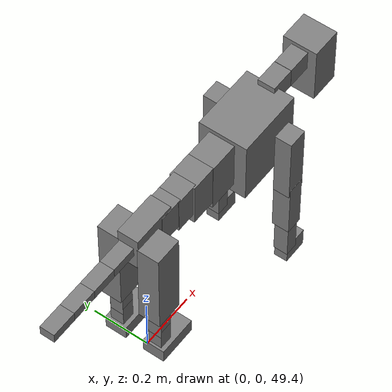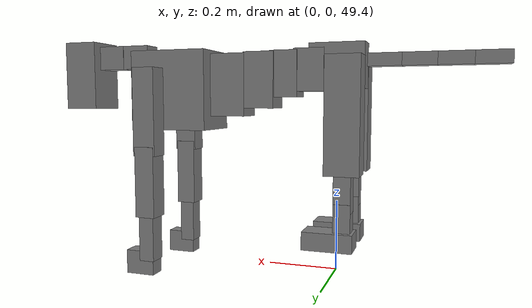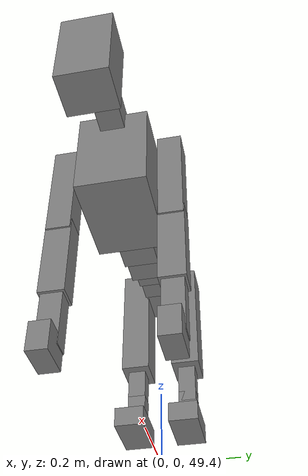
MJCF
<mujoco model="dog">

    <default>
        <joint armature="0.02" stiffness="1" damping="0.2" limited="true"/>
        <geom condim="3" friction="1 0.05 0.05" margin="0.01"/>
        <motor ctrllimited="true" ctrlrange="-1.0 1.0" forcelimited="true" gear="50"/>
    </default>

    <compiler inertiafromgeom="true" angle="radian"/>

    <option timestep="0.016" iterations="50" tolerance="1e-10" solver="Newton" jacobian="dense" cone="pyramidal"/>

    <size nconmax="20000" njmax="60000" nstack="5000000"/>
    <visual>
        <map force="0.1" zfar="30"/>
        <rgba haze="0.15 0.25 0.35 1"/>
        <quality shadowsize="2048"/>
        <global offwidth="800" offheight="800"/>
    </visual>

    <asset>
        <texture type="skybox" builtin="gradient" rgb1="0.3 0.5 0.7" rgb2="0 0 0" width="512" height="512"/>
        <texture name="texplane" type="2d" builtin="checker" rgb1=".2 .3 .4" rgb2=".1 0.15 0.2" width="512" height="512"
                 mark="cross" markrgb=".8 .8 .8"/>
        <texture name="texgeom" type="cube" builtin="flat" mark="cross" width="127" height="1278" rgb1="0.8 0.6 0.4"
                 rgb2="0.8 0.6 0.4" markrgb="1 1 1" random="0.01"/>

        <material name="matplane" reflectance="0.3" texture="texplane" texrepeat="1 1" texuniform="true"/>
        <material name="matgeom" texture="texgeom" texuniform="true" rgba="0.8 0.6 .4 1"/>
    </asset>

    <worldbody>
        <geom name="floor" pos="0 0 0" size="0 0 .25" type="plane" material="matplane" condim="3"/>

        <light directional="false" diffuse=".2 .2 .2" specular="0 0 0" pos="0 0 5" dir="0 0 -1" castshadow="false"/>
        <light mode="targetbodycom" target="torso" directional="false" diffuse=".8 .8 .8" specular="0.3 0.3 0.3"
               pos="0 0 4.0" dir="0 0 -1"/>

        <body name="root" pos="0 0 50">
            <freejoint name="root_1"/>
            <geom type="box" pos="0 0 -0.02" size="0.0774  0.0358  0.063" density="2030"/>

            <body name="spine1" pos="0.054 0 0">
                <joint name="spine1_y" axis="0 1 0" range="0 0.7" limited="true"/>
                <geom type="box" pos="0.02375 0 -0.03" size="0.04375  0.0375  0.05985" density="2030"/>

                <body name="spine2" pos="0.0612 0 0">
                    <joint name="spine2_y" axis="0 1 0" range="-0.15 0.15" limited="true"/>
                    <geom type="box" pos="0.03555  0  -0.04" size="0.04055  0.039  0.06615" density="2030"/>

                    <body name="spine3" pos="0.0730 0 0">
                        <joint name="spine3_y" axis="0 1 0" range="-0.15 0.15" limited="true"/>
                        <geom type="box" pos="0.03555  0  -0.057" size="0.04555  0.0445  0.081" density="2030"/>

                        <body name="spine4" pos="0.0780 0 0">
                            <joint name="spine4_y" axis="0 1 0" range="-0.15 0.15" limited="true"/>
                            <geom type="box" pos="0.05265  0  -0.07" size="0.05265  0.045  0.09135" density="2030"/>

                            <body name="torso" pos="0.1082 0 0">
                                <joint name="torso_y" axis="0 1 0" range="-0.15 0.15" limited="true"/>
                                <geom type="box" pos="0.11925  0  -0.085" size="0.11925  0.085  0.11745"
                                      density="2030"/>

                                <body name="neck1" pos="0.2160  0   0.0180">
                                    <joint name="neck1_y" axis="0 1 0" range="-1.2  -1" limited="true"/>
                                    <geom type="box" pos="0.0423  0  0" size="0.0423  0.03  0.036" density="2325"/>

                                    <body name="neck2" pos="0.0853  0  0">
                                        <joint name="neck2_y" axis="0 1 0" range="0.1  0" limited="true"/>
                                        <geom type="box" pos="0.0423  0  0" size="0.0423  0.03  0.036" density="2325"/>

                                        <body name="head" pos="0.0853  0  0">
                                            <joint name="head_y" axis="0 1 0" range="-0.3  -0.2" limited="true"/>
                                            <geom type="box" pos="0.0531  0  -0.055" size="0.0531  0.06  0.1044"
                                                  density="4030"/>

                                        </body>
                                    </body>
                                </body>

                                <body name="front_shoulder" pos="0.156  0   -0.0480">
                                    <joint name="front_shoulder_y" axis="0 1 0" range="-1 1.5" limited="true"/>
                                    <geom type="box" pos="0 0.13 -0.1004" size="0.0339  0.0289  0.1271" density="1158"/>
                                    <geom type="box" pos="0 -0.13 -0.1004" size="0.0339  0.0289  0.1271"
                                          density="1158"/>

                                    <body name="front_elbow" pos="0  0  -0.2009">
                                        <joint name="front_elbow_y" axis="0 1 0" range="-2 0" limited="true"/>
                                        <geom type="box" pos="0 0.13 -0.1028" size="0.0297  0.0304  0.1028"
                                              density="1081"/>
                                        <geom type="box" pos="0 -0.13 -0.1028" size="0.0297  0.0304  0.1028"
                                              density="1081"/>

                                        <body name="front_wrist" pos="0  0  -0.2057">
                                            <joint name="front_wrist_y" axis="0 1 0" range="-0.2 0" limited="true"/>
                                            <geom type="box" pos="0 0.13 -0.0583" size="0.0227  0.0252  0.0714"
                                                  density="1664"/>
                                            <geom type="box" pos="0 -0.13 -0.0583" size="0.0227  0.0252  0.0714"
                                                  density="1664"/>

                                            <body name="front_finger_end" pos="0  0  -0.1165">
                                                <joint name="front_finger_y" axis="0 1 0" range="-0.4 1"
                                                       limited="true"/>
                                                <geom type="box" pos="0.0236  0.13  -0.0198"
                                                      size="0.0433  0.0236  0.0348" density="1515"/>
                                                <geom type="box" pos="0.0236  -0.13  -0.0198"
                                                      size="0.0433  0.0236  0.0348" density="1515"/>

                                            </body>

                                        </body>
                                    </body>
                                </body>

                            </body>
                        </body>
                    </body>
                </body>
            </body>

            <body name="back_hip" pos="-0.03 0 -0.018">
                <joint name="back_hip_y" axis="0 1 0" range="-1.5 0.3" limited="true"/>
                <geom type="box" pos="0 0.07 -0.1380" size="0.0480  0.0376  0.1608" density="1154"/>
                <geom type="box" pos="0 -0.07 -0.1380" size="0.0480  0.0376  0.1608" density="1154"/>

                <body name="back_knee" pos="0  0  -0.2760">
                    <joint name="back_knee_y" axis="0 1 0" range="0 2.8" limited="true"/>
                    <geom type="box" pos="0 0.07 -0.0553" size="0.0235  0.0232  0.0709" density="1227"/>
                    <geom type="box" pos="0 -0.07 -0.0553" size="0.0235  0.0232  0.0709" density="1227"/>

                    <body name="back_ankle" pos="0  0  -0.1107">
                        <joint name="back_ankle_y" axis="0 1 0" range="-2.2 0" limited="true"/>
                        <geom type="box" pos="0 0.07 -0.0411" size="0.0235  0.0235  0.0523" density="1284"/>
                        <geom type="box" pos="0 -0.07 -0.0411" size="0.0235  0.0235  0.0523" density="1284"/>

                        <body name="back_toe_end" pos="0  0  -0.0822">
                            <joint name="back_toe_y" axis="0 1 0" range="-0.4 1" limited="true"/>
                            <geom type="box" pos="0.0377  0.07  -0.0103" size="0.0692  0.0377  0.0253" density="1515"/>
                            <geom type="box" pos="0.0377  -0.07  -0.0103" size="0.0692  0.0377  0.0253" density="1515"/>

                        </body>
                    </body>
                </body>
            </body>

            <body name="tail1" pos="-0.074 0 -0.006">
                <joint name="tail1_y" axis="0 1 0" range="-0.2 0.2" limited="true"/>
                <geom type="box" pos="-0.0536  0  0" size="0.045  0.025  0.0175" density="1587"/>

                <body name="tail2" pos="-0.09 0 0">
                    <joint name="tail2_y" axis="0 1 0" range="-0.2 0.2" limited="true"/>
                    <geom type="box" pos="-0.0536  0  0" size="0.045  0.025  0.0175" density="1587"/>

                    <body name="tail3" pos="-0.09 0 0">
                        <joint name="tail3_y" axis="0 1 0" range="-0.2 0.2" limited="true"/>
                        <geom type="box" pos="-0.0536  0  0" size="0.045  0.025  0.0175" density="1587"/>

                        <body name="tail4" pos="-0.09 0 0">
                            <joint name="tail4_y" axis="0 1 0" range="-0.2 0.2" limited="true"/>
                            <geom type="box" pos="-0.0536  0  0" size="0.045  0.025  0.0175" density="1587"/>

                        </body>
                    </body>
                </body>
            </body>
        </body>
    </worldbody>

    <actuator>
        <motor joint="spine1_y" forcerange="-150 150     "/>
        <motor joint="spine2_y" forcerange="-150 150     "/>
        <motor joint="spine3_y" forcerange="-150 150     "/>
        <motor joint="spine4_y" forcerange="-150 150     "/>
        <motor joint="torso_y" forcerange="-150 150     "/>
        <motor joint="neck1_y" forcerange="-100 100       "/>
        <motor joint="neck2_y" forcerange="-100 100       "/>
        <motor joint="head_y" forcerange="-150 150       "/>
        <motor joint="front_shoulder_y" forcerange="-117.44 175.46"/>
        <motor joint="front_elbow_y" forcerange="-124.20 196.63"/>
        <motor joint="front_wrist_y" forcerange="-109.95 91.68"/>
        <motor joint="front_finger_y" forcerange="-38.44 47.43"/>
        <motor joint="back_hip_y" forcerange="-353.81 347.92"/>
        <motor joint="back_knee_y" forcerange="-307.25 229.67"/>
        <motor joint="back_angle_y" forcerange="-141.57 135.20"/>
        <motor joint="back_toe_y" forcerange="-123.15 98.62"/>
        <motor joint="tail1_y" forcerange="-50 50     "/>
        <motor joint="tail2_y" forcerange="-50 50     "/>
        <motor joint="tail3_y" forcerange="-50 50     "/>
        <motor joint="tail4_y" forcerange="-50 50     "/>
    </actuator>
</mujoco>
